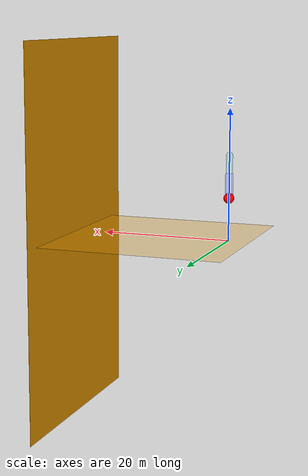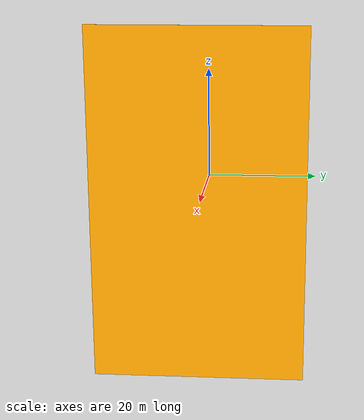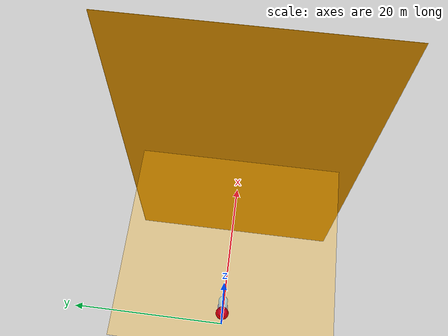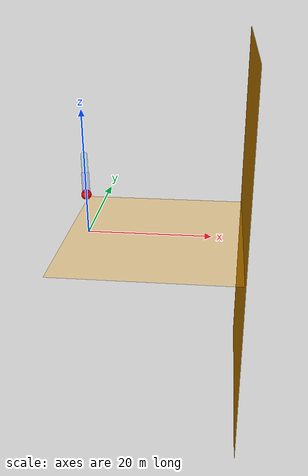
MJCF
<mujoco>

    <option gravity = "0 0 -9.81" viscosity = "0.00002" density = "1.2" wind = "0 5 0" />
    <visual>
        <headlight ambient = "0.6 0.2 0.2" diffuse = "0.5 0.5 0.5" specular = "0.5 0.5 0.4" />
    </visual>

    <worldbody>
        <!-- Defining the floor with light setting -->
        <geom name = "floor" type = "plane" size = "25 15 0.1" rgba = "1 0.65 0 1"/>
        <!-- Wall for background -->
        <geom name = "wall" type = "plane" size = "30 18 0.1" rgba = "1 0.65 0 1" pos = "25 0 0.1" euler = "0 -90 0"/>
        <light diffuse = "1 1 1" pos = " 0 0 50" dir = "0 0 -1"/>

        <!-- Defining a body in the environment -->
        <body name = "shoulder1" pos = "0 0 13">
            <geom  name = "shoulder" type ="capsule" size = "0.5" mass= "0.3"  fromto = "0 0 0 0 0 -3" rgba = "0 0.8 0.7 0.2" euler = "0 0 0 "/>
            <joint name= "joint_shoulder" type = "ball" pos = "0 0 0"/>

            <body name = "elbow1" pos ="0 0 -3">
                <geom  name = "elbow" type= "capsule" size = "0.6" mass = "0.4" rgba = "0 0 1 0.2" fromto = "0 0 0 0 0 -3.5" />
                <joint name = "joint_elbow" type = "hinge" pos = "0 0 0" axis = "1 0 0"/>

                <body name = "wrist1" pos ="0 0 -3.5">
                    <geom  name = "wrist" type= "sphere" size = "0.8" mass = "6" rgba = "1 0 0 1"  />
                </body>
            </body>

        </body>

    </worldbody>

</mujoco>
